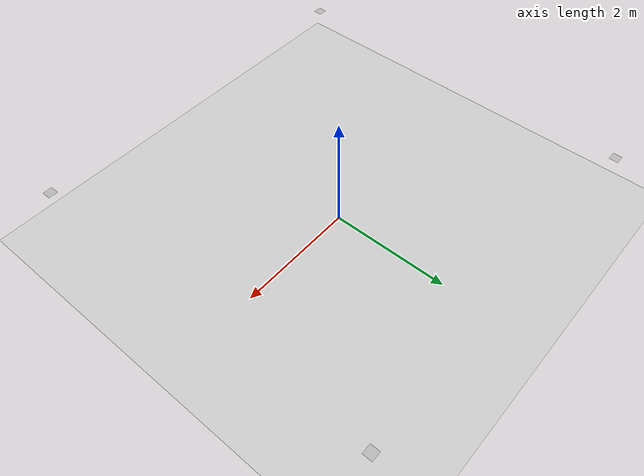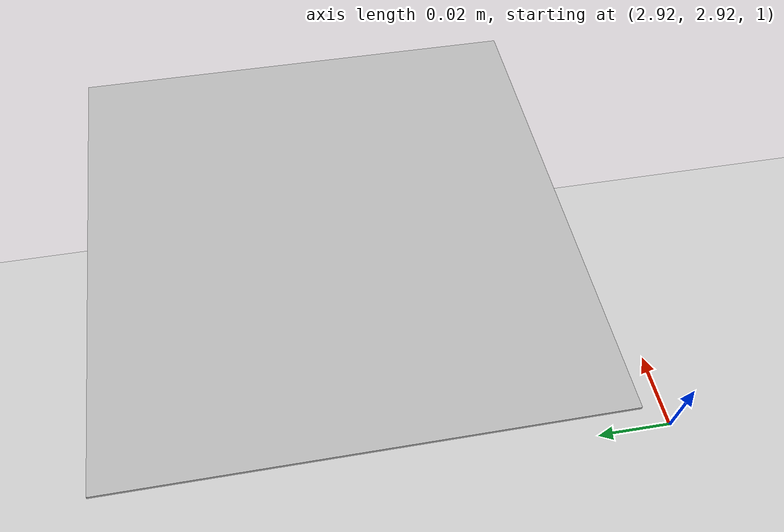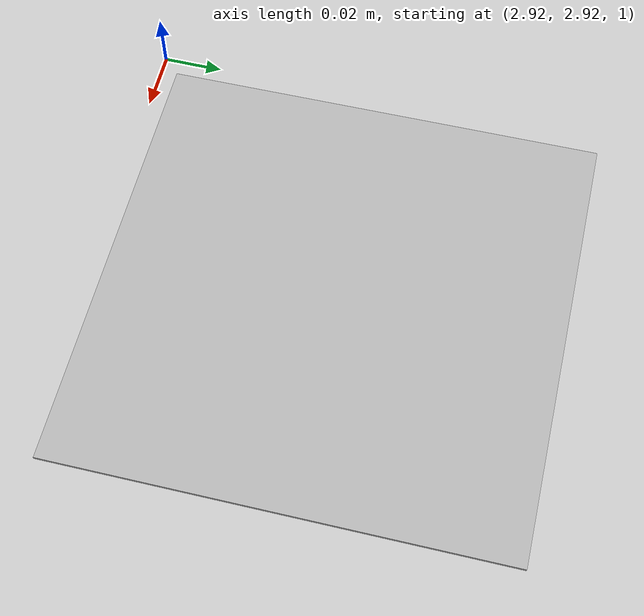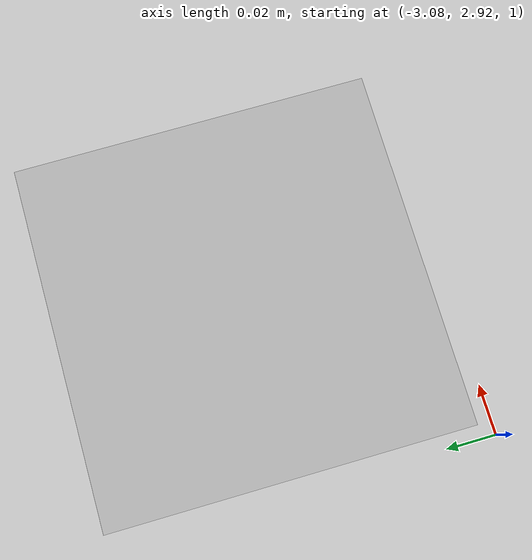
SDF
<?xml version="1.0" ?>
<sdf version="1.4">
  <world name="default">
    <include>
      <uri>model://ground_plane</uri>
    </include>

    <include>
      <uri>model://sun</uri>
    </include>

    <include>
        <name>tag_0</name>
	<uri>model://tag</uri>
	<pose>3 3 1 0 0 3.14159265</pose>
    </include>

    <include>
        <name>tag_1</name>
	<uri>model://tag</uri>
	<pose>3 -3 1 0 0 1.57079632679</pose>
    </include>

    <include>
        <name>tag_2</name>
	<uri>model://tag</uri>
	<pose>-3 3 1 0 0 -1.57079632679</pose>
    </include>

    <include>
        <name>tag_3</name>
	<uri>model://tag</uri>
	<pose>-3 -3 1 0 0 0</pose>
    </include>

  </world>
</sdf>

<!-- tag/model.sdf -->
<sdf version='1.6'>
  <model name='tag'>
    <link name='link'>
      <inertial>
        <mass>1</mass>
        <inertia>
          <ixx>0.166667</ixx>
          <ixy>0</ixy>
          <ixz>0</ixz>
          <iyy>0.166667</iyy>
          <iyz>0</iyz>
          <izz>0.166667</izz>
        </inertia>
      </inertial>
      <self_collide>0</self_collide>
      <kinematic>0</kinematic>
      <visual name='visual'>
        <geometry>
          <box>
            <size>0.1488 0.1488 0.001</size>
          </box>
        </geometry>
        <material>
	  <script>
            <uri>model://tag/material/scripts</uri>
            <uri>model://tag/material/texture</uri>
	    <name>tag/Diffuse</name>
	  </script>
	</material>
        <transparency>0</transparency>
      </visual>
      <collision name='collision'>
        <laser_retro>0</laser_retro>
        <max_contacts>10</max_contacts>
        <geometry>
          <box>
            <size>0.1488 0.1488 0.001</size>
          </box>
        </geometry>
        <surface>
          <friction>
            <ode>
              <mu>1</mu>
              <mu2>1</mu2>
              <fdir1>0 0 0</fdir1>
              <slip1>0</slip1>
              <slip2>0</slip2>
            </ode>
            <torsional>
              <coefficient>1</coefficient>
              <patch_radius>0</patch_radius>
              <surface_radius>0</surface_radius>
              <use_patch_radius>1</use_patch_radius>
              <ode>

                <slip>0</slip>
              </ode>
            </torsional>
          </friction>
          <bounce>
            <restitution_coefficient>0</restitution_coefficient>
            <threshold>1e+06</threshold>
          </bounce>
          <contact>
            <collide_without_contact>0</collide_without_contact>
            <collide_without_contact_bitmask>1</collide_without_contact_bitmask>
            <collide_bitmask>1</collide_bitmask>
            <ode>
              <soft_cfm>0</soft_cfm>
              <soft_erp>0.2</soft_erp>
              <kp>1e+13</kp>
              <kd>1</kd>
              <max_vel>0.01</max_vel>
              <min_depth>0</min_depth>
            </ode>
            <bullet>
              <split_impulse>1</split_impulse>
              <split_impulse_penetration_threshold>-0.01</split_impulse_penetration_threshold>
              <soft_cfm>0</soft_cfm>
              <soft_erp>0.2</soft_erp>
              <kp>1e+13</kp>
              <kd>1</kd>
            </bullet>
          </contact>
        </surface>
      </collision>
    </link>
    <static>0</static>
    <allow_auto_disable>1</allow_auto_disable>
  </model>
</sdf>
